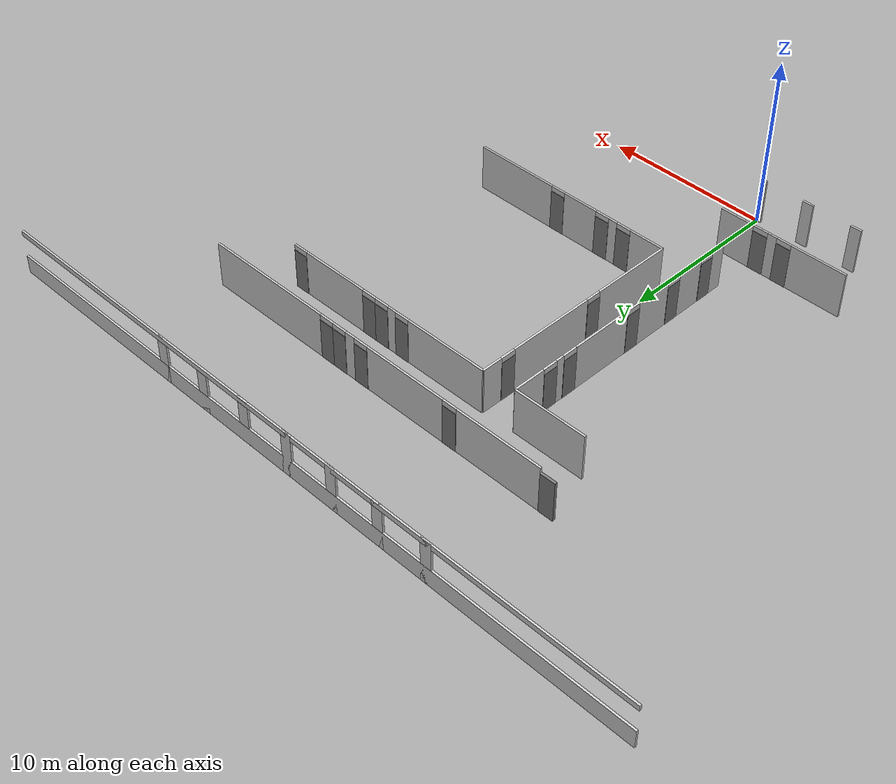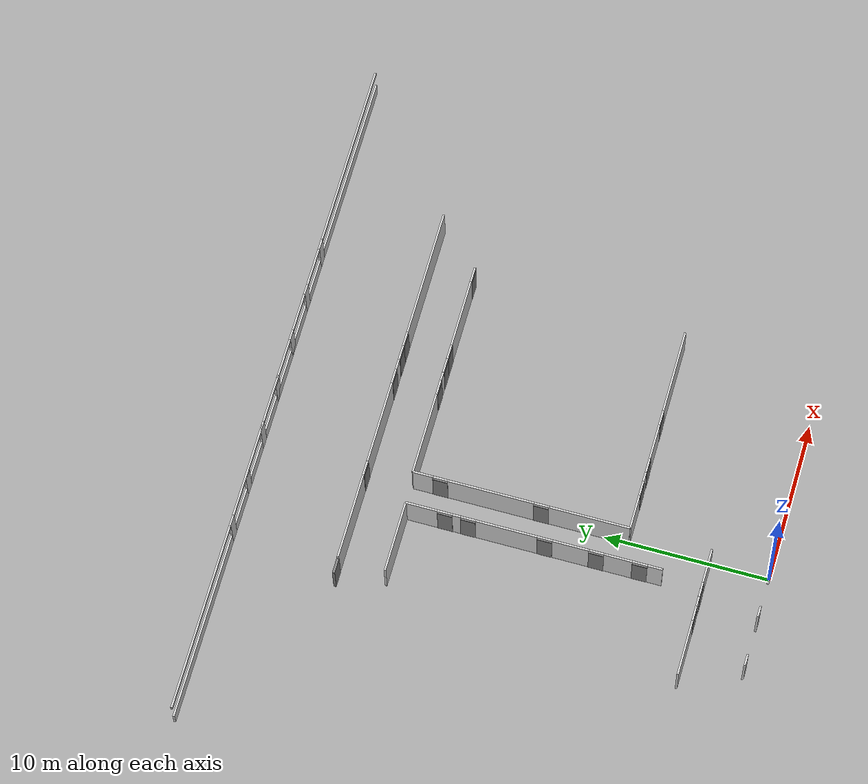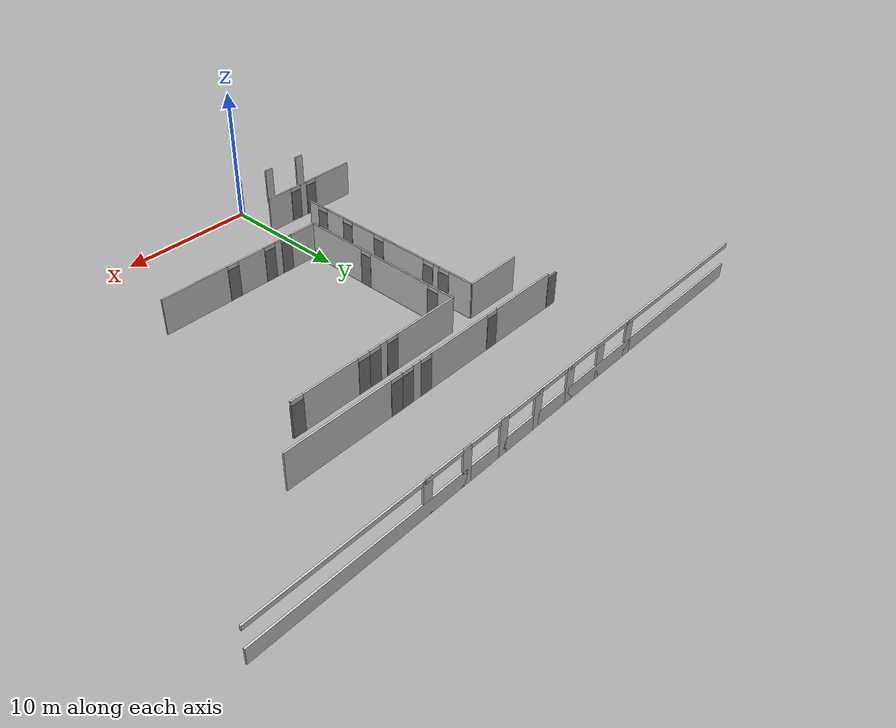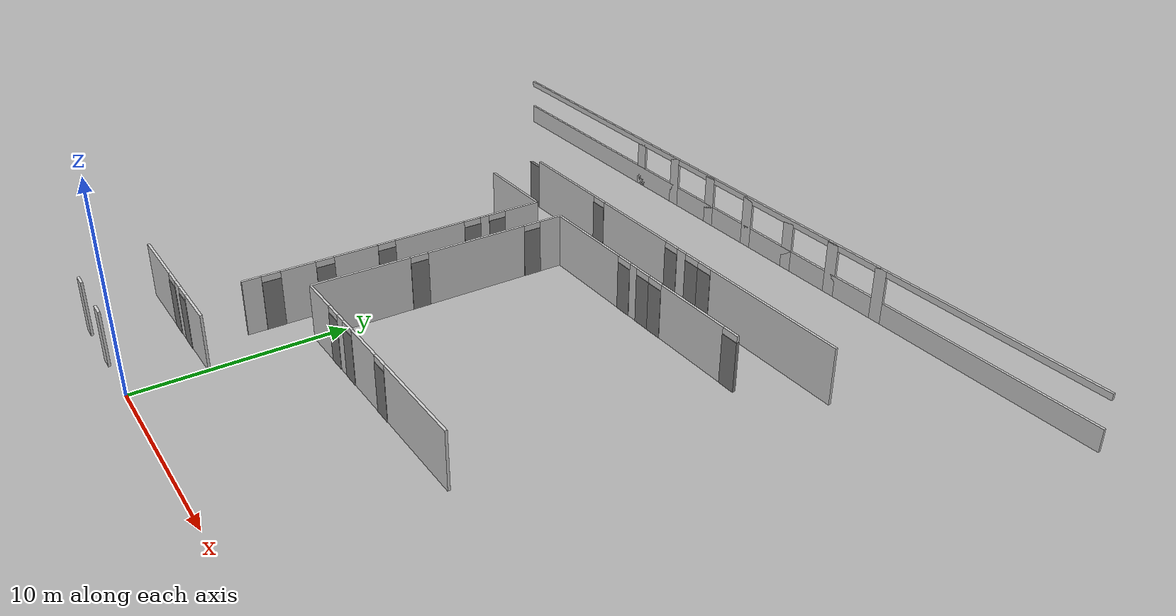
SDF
<sdf version="1.10">
 <model name="fourth_floor">
  <static>true</static>
  <link name="exteriors_001_solid">
   <pose>-0.1270 0.0000 1.3750 0 0 3.141593</pose>
   <collision name="exteriors_001_solid_collision">
    <geometry><box><size>0.2540 0.1199 2.7501</size></box></geometry>
   </collision>
   <visual name="exteriors_001_solid_visual">
    <geometry><box><size>0.2540 0.1199 2.7501</size></box></geometry>
    <material><ambient>0.82 0.82 0.82 1</ambient><diffuse>0.82 0.82 0.82 1</diffuse></material>
   </visual>
  </link>
  <link name="exteriors_002_windows_block_post_1">
   <pose>-2.9623 0.0000 1.3750 0 0 3.141593</pose>
   <collision name="exteriors_002_windows_block_post_1_collision">
    <geometry><box><size>0.6794 0.1199 2.7501</size></box></geometry>
   </collision>
   <visual name="exteriors_002_windows_block_post_1_visual">
    <geometry><box><size>0.6794 0.1199 2.7501</size></box></geometry>
    <material><ambient>0.82 0.82 0.82 1</ambient><diffuse>0.82 0.82 0.82 1</diffuse></material>
   </visual>
  </link>
  <link name="exteriors_002_windows_block_post_2">
   <pose>-6.0103 0.0000 1.3750 0 0 3.141593</pose>
   <collision name="exteriors_002_windows_block_post_2_collision">
    <geometry><box><size>0.6794 0.1199 2.7501</size></box></geometry>
   </collision>
   <visual name="exteriors_002_windows_block_post_2_visual">
    <geometry><box><size>0.6794 0.1199 2.7501</size></box></geometry>
    <material><ambient>0.82 0.82 0.82 1</ambient><diffuse>0.82 0.82 0.82 1</diffuse></material>
   </visual>
  </link>
  <link name="exteriors_018_windows_block_lower_strip">
   <pose>3.3877 31.0451 0.5461 0 0 0.000000</pose>
   <collision name="exteriors_018_windows_block_lower_strip_collision">
    <geometry><box><size>41.9926 0.1199 1.0922</size></box></geometry>
   </collision>
   <visual name="exteriors_018_windows_block_lower_strip_visual">
    <geometry><box><size>41.9926 0.1199 1.0922</size></box></geometry>
    <material><ambient>0.82 0.82 0.82 1</ambient><diffuse>0.82 0.82 0.82 1</diffuse></material>
   </visual>
  </link>
  <link name="exteriors_018_windows_block_upper_strip">
   <pose>3.3877 31.0451 2.5942 0 0 0.000000</pose>
   <collision name="exteriors_018_windows_block_upper_strip_collision">
    <geometry><box><size>41.9926 0.1199 0.3117</size></box></geometry>
   </collision>
   <visual name="exteriors_018_windows_block_upper_strip_visual">
    <geometry><box><size>41.9926 0.1199 0.3117</size></box></geometry>
    <material><ambient>0.82 0.82 0.82 1</ambient><diffuse>0.82 0.82 0.82 1</diffuse></material>
   </visual>
  </link>
  <link name="exteriors_018_windows_block_post_4">
   <pose>-5.7563 31.0451 1.3750 0 0 0.000000</pose>
   <collision name="exteriors_018_windows_block_post_4_collision">
    <geometry><box><size>0.6794 0.1199 2.7501</size></box></geometry>
   </collision>
   <visual name="exteriors_018_windows_block_post_4_visual">
    <geometry><box><size>0.6794 0.1199 2.7501</size></box></geometry>
    <material><ambient>0.82 0.82 0.82 1</ambient><diffuse>0.82 0.82 0.82 1</diffuse></material>
   </visual>
  </link>
  <link name="exteriors_018_windows_block_post_5">
   <pose>-2.7083 31.0451 1.3750 0 0 0.000000</pose>
   <collision name="exteriors_018_windows_block_post_5_collision">
    <geometry><box><size>0.6794 0.1199 2.7501</size></box></geometry>
   </collision>
   <visual name="exteriors_018_windows_block_post_5_visual">
    <geometry><box><size>0.6794 0.1199 2.7501</size></box></geometry>
    <material><ambient>0.82 0.82 0.82 1</ambient><diffuse>0.82 0.82 0.82 1</diffuse></material>
   </visual>
  </link>
  <link name="exteriors_018_windows_block_post_6">
   <pose>0.3397 31.0451 1.3750 0 0 0.000000</pose>
   <collision name="exteriors_018_windows_block_post_6_collision">
    <geometry><box><size>0.6794 0.1199 2.7501</size></box></geometry>
   </collision>
   <visual name="exteriors_018_windows_block_post_6_visual">
    <geometry><box><size>0.6794 0.1199 2.7501</size></box></geometry>
    <material><ambient>0.82 0.82 0.82 1</ambient><diffuse>0.82 0.82 0.82 1</diffuse></material>
   </visual>
  </link>
  <link name="exteriors_018_windows_block_post_7">
   <pose>3.3877 31.0451 1.3750 0 0 0.000000</pose>
   <collision name="exteriors_018_windows_block_post_7_collision">
    <geometry><box><size>0.6794 0.1199 2.7501</size></box></geometry>
   </collision>
   <visual name="exteriors_018_windows_block_post_7_visual">
    <geometry><box><size>0.6794 0.1199 2.7501</size></box></geometry>
    <material><ambient>0.82 0.82 0.82 1</ambient><diffuse>0.82 0.82 0.82 1</diffuse></material>
   </visual>
  </link>
  <link name="exteriors_018_windows_block_post_8">
   <pose>6.4357 31.0451 1.3750 0 0 0.000000</pose>
   <collision name="exteriors_018_windows_block_post_8_collision">
    <geometry><box><size>0.6794 0.1199 2.7501</size></box></geometry>
   </collision>
   <visual name="exteriors_018_windows_block_post_8_visual">
    <geometry><box><size>0.6794 0.1199 2.7501</size></box></geometry>
    <material><ambient>0.82 0.82 0.82 1</ambient><diffuse>0.82 0.82 0.82 1</diffuse></material>
   </visual>
  </link>
  <link name="exteriors_018_windows_block_post_9">
   <pose>9.4837 31.0451 1.3750 0 0 0.000000</pose>
   <collision name="exteriors_018_windows_block_post_9_collision">
    <geometry><box><size>0.6794 0.1199 2.7501</size></box></geometry>
   </collision>
   <visual name="exteriors_018_windows_block_post_9_visual">
    <geometry><box><size>0.6794 0.1199 2.7501</size></box></geometry>
    <material><ambient>0.82 0.82 0.82 1</ambient><diffuse>0.82 0.82 0.82 1</diffuse></material>
   </visual>
  </link>
  <link name="exteriors_018_windows_block_post_10">
   <pose>12.5317 31.0451 1.3750 0 0 0.000000</pose>
   <collision name="exteriors_018_windows_block_post_10_collision">
    <geometry><box><size>0.6794 0.1199 2.7501</size></box></geometry>
   </collision>
   <visual name="exteriors_018_windows_block_post_10_visual">
    <geometry><box><size>0.6794 0.1199 2.7501</size></box></geometry>
    <material><ambient>0.82 0.82 0.82 1</ambient><diffuse>0.82 0.82 0.82 1</diffuse></material>
   </visual>
  </link>
  <link name="hallways_001_solid">
   <pose>-1.0541 3.5814 1.3750 0 0 3.141593</pose>
   <collision name="hallways_001_solid_collision">
    <geometry><box><size>2.1082 0.1199 2.7501</size></box></geometry>
   </collision>
   <visual name="hallways_001_solid_visual">
    <geometry><box><size>2.1082 0.1199 2.7501</size></box></geometry>
    <material><ambient>0.82 0.82 0.82 1</ambient><diffuse>0.82 0.82 0.82 1</diffuse></material>
   </visual>
  </link>
  <link name="hallways_002_door_lintel">
   <pose>-2.5654 3.5814 2.5942 0 0 3.141593</pose>
   <collision name="hallways_002_door_lintel_collision">
    <geometry><box><size>0.9144 0.1199 0.3117</size></box></geometry>
   </collision>
   <visual name="hallways_002_door_lintel_visual">
    <geometry><box><size>0.9144 0.1199 0.3117</size></box></geometry>
    <material><ambient>0.82 0.82 0.82 1</ambient><diffuse>0.82 0.82 0.82 1</diffuse></material>
   </visual>
  </link>
  <link name="hallways_003_solid">
   <pose>-3.3147 3.5814 1.3750 0 0 3.141593</pose>
   <collision name="hallways_003_solid_collision">
    <geometry><box><size>0.5842 0.1199 2.7501</size></box></geometry>
   </collision>
   <visual name="hallways_003_solid_visual">
    <geometry><box><size>0.5842 0.1199 2.7501</size></box></geometry>
    <material><ambient>0.82 0.82 0.82 1</ambient><diffuse>0.82 0.82 0.82 1</diffuse></material>
   </visual>
  </link>
  <link name="hallways_004_door_lintel">
   <pose>-4.0640 3.5814 2.5942 0 0 3.141593</pose>
   <collision name="hallways_004_door_lintel_collision">
    <geometry><box><size>0.9144 0.1199 0.3117</size></box></geometry>
   </collision>
   <visual name="hallways_004_door_lintel_visual">
    <geometry><box><size>0.9144 0.1199 0.3117</size></box></geometry>
    <material><ambient>0.82 0.82 0.82 1</ambient><diffuse>0.82 0.82 0.82 1</diffuse></material>
   </visual>
  </link>
  <link name="hallways_005_solid">
   <pose>-6.2103 3.5814 1.3750 0 0 3.141593</pose>
   <collision name="hallways_005_solid_collision">
    <geometry><box><size>3.3782 0.1199 2.7501</size></box></geometry>
   </collision>
   <visual name="hallways_005_solid_visual">
    <geometry><box><size>3.3782 0.1199 2.7501</size></box></geometry>
    <material><ambient>0.82 0.82 0.82 1</ambient><diffuse>0.82 0.82 0.82 1</diffuse></material>
   </visual>
  </link>
  <link name="hallways_032_solid">
   <pose>-3.6195 24.4399 1.3750 0 0 0.000000</pose>
   <collision name="hallways_032_solid_collision">
    <geometry><box><size>5.2832 0.1199 2.7501</size></box></geometry>
   </collision>
   <visual name="hallways_032_solid_visual">
    <geometry><box><size>5.2832 0.1199 2.7501</size></box></geometry>
    <material><ambient>0.82 0.82 0.82 1</ambient><diffuse>0.82 0.82 0.82 1</diffuse></material>
   </visual>
  </link>
  <link name="hallways_033_door_lintel">
   <pose>-0.5207 24.4399 2.5942 0 0 0.000000</pose>
   <collision name="hallways_033_door_lintel_collision">
    <geometry><box><size>0.9144 0.1199 0.3117</size></box></geometry>
   </collision>
   <visual name="hallways_033_door_lintel_visual">
    <geometry><box><size>0.9144 0.1199 0.3117</size></box></geometry>
    <material><ambient>0.82 0.82 0.82 1</ambient><diffuse>0.82 0.82 0.82 1</diffuse></material>
   </visual>
  </link>
  <link name="hallways_034_solid">
   <pose>2.5019 24.4399 1.3750 0 0 0.000000</pose>
   <collision name="hallways_034_solid_collision">
    <geometry><box><size>5.1308 0.1199 2.7501</size></box></geometry>
   </collision>
   <visual name="hallways_034_solid_visual">
    <geometry><box><size>5.1308 0.1199 2.7501</size></box></geometry>
    <material><ambient>0.82 0.82 0.82 1</ambient><diffuse>0.82 0.82 0.82 1</diffuse></material>
   </visual>
  </link>
  <link name="hallways_035_door_lintel">
   <pose>5.5245 24.4399 2.5942 0 0 0.000000</pose>
   <collision name="hallways_035_door_lintel_collision">
    <geometry><box><size>0.9144 0.1199 0.3117</size></box></geometry>
   </collision>
   <visual name="hallways_035_door_lintel_visual">
    <geometry><box><size>0.9144 0.1199 0.3117</size></box></geometry>
    <material><ambient>0.82 0.82 0.82 1</ambient><diffuse>0.82 0.82 0.82 1</diffuse></material>
   </visual>
  </link>
  <link name="hallways_036_solid">
   <pose>6.2992 24.4399 1.3750 0 0 0.000000</pose>
   <collision name="hallways_036_solid_collision">
    <geometry><box><size>0.6350 0.1199 2.7501</size></box></geometry>
   </collision>
   <visual name="hallways_036_solid_visual">
    <geometry><box><size>0.6350 0.1199 2.7501</size></box></geometry>
    <material><ambient>0.82 0.82 0.82 1</ambient><diffuse>0.82 0.82 0.82 1</diffuse></material>
   </visual>
  </link>
  <link name="hallways_037_door_lintel">
   <pose>7.0739 24.4399 2.5942 0 0 0.000000</pose>
   <collision name="hallways_037_door_lintel_collision">
    <geometry><box><size>0.9144 0.1199 0.3117</size></box></geometry>
   </collision>
   <visual name="hallways_037_door_lintel_visual">
    <geometry><box><size>0.9144 0.1199 0.3117</size></box></geometry>
    <material><ambient>0.82 0.82 0.82 1</ambient><diffuse>0.82 0.82 0.82 1</diffuse></material>
   </visual>
  </link>
  <link name="hallways_038_door_lintel">
   <pose>7.9883 24.4399 2.5942 0 0 0.000000</pose>
   <collision name="hallways_038_door_lintel_collision">
    <geometry><box><size>0.9144 0.1199 0.3117</size></box></geometry>
   </collision>
   <visual name="hallways_038_door_lintel_visual">
    <geometry><box><size>0.9144 0.1199 0.3117</size></box></geometry>
    <material><ambient>0.82 0.82 0.82 1</ambient><diffuse>0.82 0.82 0.82 1</diffuse></material>
   </visual>
  </link>
  <link name="hallways_039_solid">
   <pose>12.4079 24.4399 1.3750 0 0 0.000000</pose>
   <collision name="hallways_039_solid_collision">
    <geometry><box><size>7.9248 0.1199 2.7501</size></box></geometry>
   </collision>
   <visual name="hallways_039_solid_visual">
    <geometry><box><size>7.9248 0.1199 2.7501</size></box></geometry>
    <material><ambient>0.82 0.82 0.82 1</ambient><diffuse>0.82 0.82 0.82 1</diffuse></material>
   </visual>
  </link>
  <link name="inner_walls_1_001_solid">
   <pose>1.0636 8.5090 1.3750 0 0 0.000000</pose>
   <collision name="inner_walls_1_001_solid_collision">
    <geometry><box><size>2.1273 0.1199 2.7501</size></box></geometry>
   </collision>
   <visual name="inner_walls_1_001_solid_visual">
    <geometry><box><size>2.1273 0.1199 2.7501</size></box></geometry>
    <material><ambient>0.82 0.82 0.82 1</ambient><diffuse>0.82 0.82 0.82 1</diffuse></material>
   </visual>
  </link>
  <link name="inner_walls_1_002_door_lintel">
   <pose>2.5844 8.5090 2.5942 0 0 0.000000</pose>
   <collision name="inner_walls_1_002_door_lintel_collision">
    <geometry><box><size>0.9144 0.1199 0.3117</size></box></geometry>
   </collision>
   <visual name="inner_walls_1_002_door_lintel_visual">
    <geometry><box><size>0.9144 0.1199 0.3117</size></box></geometry>
    <material><ambient>0.82 0.82 0.82 1</ambient><diffuse>0.82 0.82 0.82 1</diffuse></material>
   </visual>
  </link>
  <link name="inner_walls_1_003_solid">
   <pose>3.3211 8.5090 1.3750 0 0 0.000000</pose>
   <collision name="inner_walls_1_003_solid_collision">
    <geometry><box><size>0.5588 0.1199 2.7501</size></box></geometry>
   </collision>
   <visual name="inner_walls_1_003_solid_visual">
    <geometry><box><size>0.5588 0.1199 2.7501</size></box></geometry>
    <material><ambient>0.82 0.82 0.82 1</ambient><diffuse>0.82 0.82 0.82 1</diffuse></material>
   </visual>
  </link>
  <link name="inner_walls_1_004_door_lintel">
   <pose>4.0576 8.5090 2.5942 0 0 0.000000</pose>
   <collision name="inner_walls_1_004_door_lintel_collision">
    <geometry><box><size>0.9144 0.1199 0.3117</size></box></geometry>
   </collision>
   <visual name="inner_walls_1_004_door_lintel_visual">
    <geometry><box><size>0.9144 0.1199 0.3117</size></box></geometry>
    <material><ambient>0.82 0.82 0.82 1</ambient><diffuse>0.82 0.82 0.82 1</diffuse></material>
   </visual>
  </link>
  <link name="inner_walls_1_005_solid">
   <pose>5.6261 8.5090 1.3750 0 0 0.000000</pose>
   <collision name="inner_walls_1_005_solid_collision">
    <geometry><box><size>2.2225 0.1199 2.7501</size></box></geometry>
   </collision>
   <visual name="inner_walls_1_005_solid_visual">
    <geometry><box><size>2.2225 0.1199 2.7501</size></box></geometry>
    <material><ambient>0.82 0.82 0.82 1</ambient><diffuse>0.82 0.82 0.82 1</diffuse></material>
   </visual>
  </link>
  <link name="inner_walls_1_006_door_lintel">
   <pose>7.1945 8.5090 2.5942 0 0 0.000000</pose>
   <collision name="inner_walls_1_006_door_lintel_collision">
    <geometry><box><size>0.9144 0.1199 0.3117</size></box></geometry>
   </collision>
   <visual name="inner_walls_1_006_door_lintel_visual">
    <geometry><box><size>0.9144 0.1199 0.3117</size></box></geometry>
    <material><ambient>0.82 0.82 0.82 1</ambient><diffuse>0.82 0.82 0.82 1</diffuse></material>
   </visual>
  </link>
  <link name="inner_walls_1_007_solid">
   <pose>10.2298 8.5090 1.3750 0 0 0.000000</pose>
   <collision name="inner_walls_1_007_solid_collision">
    <geometry><box><size>5.1562 0.1199 2.7501</size></box></geometry>
   </collision>
   <visual name="inner_walls_1_007_solid_visual">
    <geometry><box><size>5.1562 0.1199 2.7501</size></box></geometry>
    <material><ambient>0.82 0.82 0.82 1</ambient><diffuse>0.82 0.82 0.82 1</diffuse></material>
   </visual>
  </link>
  <link name="inner_walls_1_017_door_lintel">
   <pose>13.0619 21.6916 2.5942 0 0 3.141593</pose>
   <collision name="inner_walls_1_017_door_lintel_collision">
    <geometry><box><size>0.9144 0.1199 0.3117</size></box></geometry>
   </collision>
   <visual name="inner_walls_1_017_door_lintel_visual">
    <geometry><box><size>0.9144 0.1199 0.3117</size></box></geometry>
    <material><ambient>0.82 0.82 0.82 1</ambient><diffuse>0.82 0.82 0.82 1</diffuse></material>
   </visual>
  </link>
  <link name="inner_walls_1_018_solid">
   <pose>10.4839 21.6916 1.3750 0 0 3.141593</pose>
   <collision name="inner_walls_1_018_solid_collision">
    <geometry><box><size>4.2418 0.1199 2.7501</size></box></geometry>
   </collision>
   <visual name="inner_walls_1_018_solid_visual">
    <geometry><box><size>4.2418 0.1199 2.7501</size></box></geometry>
    <material><ambient>0.82 0.82 0.82 1</ambient><diffuse>0.82 0.82 0.82 1</diffuse></material>
   </visual>
  </link>
  <link name="inner_walls_1_019_door_lintel">
   <pose>7.9057 21.6916 2.5942 0 0 3.141593</pose>
   <collision name="inner_walls_1_019_door_lintel_collision">
    <geometry><box><size>0.9144 0.1199 0.3117</size></box></geometry>
   </collision>
   <visual name="inner_walls_1_019_door_lintel_visual">
    <geometry><box><size>0.9144 0.1199 0.3117</size></box></geometry>
    <material><ambient>0.82 0.82 0.82 1</ambient><diffuse>0.82 0.82 0.82 1</diffuse></material>
   </visual>
  </link>
  <link name="inner_walls_1_020_door_lintel">
   <pose>6.9913 21.6916 2.5942 0 0 3.141593</pose>
   <collision name="inner_walls_1_020_door_lintel_collision">
    <geometry><box><size>0.9144 0.1199 0.3117</size></box></geometry>
   </collision>
   <visual name="inner_walls_1_020_door_lintel_visual">
    <geometry><box><size>0.9144 0.1199 0.3117</size></box></geometry>
    <material><ambient>0.82 0.82 0.82 1</ambient><diffuse>0.82 0.82 0.82 1</diffuse></material>
   </visual>
  </link>
  <link name="inner_walls_1_021_solid">
   <pose>6.2675 21.6916 1.3750 0 0 3.141593</pose>
   <collision name="inner_walls_1_021_solid_collision">
    <geometry><box><size>0.5334 0.1199 2.7501</size></box></geometry>
   </collision>
   <visual name="inner_walls_1_021_solid_visual">
    <geometry><box><size>0.5334 0.1199 2.7501</size></box></geometry>
    <material><ambient>0.82 0.82 0.82 1</ambient><diffuse>0.82 0.82 0.82 1</diffuse></material>
   </visual>
  </link>
  <link name="inner_walls_1_022_door_lintel">
   <pose>5.5435 21.6916 2.5942 0 0 3.141593</pose>
   <collision name="inner_walls_1_022_door_lintel_collision">
    <geometry><box><size>0.9144 0.1199 0.3117</size></box></geometry>
   </collision>
   <visual name="inner_walls_1_022_door_lintel_visual">
    <geometry><box><size>0.9144 0.1199 0.3117</size></box></geometry>
    <material><ambient>0.82 0.82 0.82 1</ambient><diffuse>0.82 0.82 0.82 1</diffuse></material>
   </visual>
  </link>
  <link name="inner_walls_1_023_solid">
   <pose>2.5463 21.6916 1.3750 0 0 3.141593</pose>
   <collision name="inner_walls_1_023_solid_collision">
    <geometry><box><size>5.0800 0.1199 2.7501</size></box></geometry>
   </collision>
   <visual name="inner_walls_1_023_solid_visual">
    <geometry><box><size>5.0800 0.1199 2.7501</size></box></geometry>
    <material><ambient>0.82 0.82 0.82 1</ambient><diffuse>0.82 0.82 0.82 1</diffuse></material>
   </visual>
  </link>
  <link name="inner_walls_1_025_solid">
   <pose>0.0063 21.0820 1.3750 0 0 4.712389</pose>
   <collision name="inner_walls_1_025_solid_collision">
    <geometry><box><size>1.2192 0.1199 2.7501</size></box></geometry>
   </collision>
   <visual name="inner_walls_1_025_solid_visual">
    <geometry><box><size>1.2192 0.1199 2.7501</size></box></geometry>
    <material><ambient>0.82 0.82 0.82 1</ambient><diffuse>0.82 0.82 0.82 1</diffuse></material>
   </visual>
  </link>
  <link name="inner_walls_1_026_door_lintel">
   <pose>0.0063 20.0152 2.5942 0 0 4.712389</pose>
   <collision name="inner_walls_1_026_door_lintel_collision">
    <geometry><box><size>0.9144 0.1199 0.3117</size></box></geometry>
   </collision>
   <visual name="inner_walls_1_026_door_lintel_visual">
    <geometry><box><size>0.9144 0.1199 0.3117</size></box></geometry>
    <material><ambient>0.82 0.82 0.82 1</ambient><diffuse>0.82 0.82 0.82 1</diffuse></material>
   </visual>
  </link>
  <link name="inner_walls_1_027_solid">
   <pose>0.0063 16.9418 1.3750 0 0 4.712389</pose>
   <collision name="inner_walls_1_027_solid_collision">
    <geometry><box><size>5.2324 0.1199 2.7501</size></box></geometry>
   </collision>
   <visual name="inner_walls_1_027_solid_visual">
    <geometry><box><size>5.2324 0.1199 2.7501</size></box></geometry>
    <material><ambient>0.82 0.82 0.82 1</ambient><diffuse>0.82 0.82 0.82 1</diffuse></material>
   </visual>
  </link>
  <link name="inner_walls_1_028_door_lintel">
   <pose>0.0063 13.8684 2.5942 0 0 4.712389</pose>
   <collision name="inner_walls_1_028_door_lintel_collision">
    <geometry><box><size>0.9144 0.1199 0.3117</size></box></geometry>
   </collision>
   <visual name="inner_walls_1_028_door_lintel_visual">
    <geometry><box><size>0.9144 0.1199 0.3117</size></box></geometry>
    <material><ambient>0.82 0.82 0.82 1</ambient><diffuse>0.82 0.82 0.82 1</diffuse></material>
   </visual>
  </link>
  <link name="inner_walls_1_029_solid">
   <pose>0.0063 10.9601 1.3750 0 0 4.712389</pose>
   <collision name="inner_walls_1_029_solid_collision">
    <geometry><box><size>4.9022 0.1199 2.7501</size></box></geometry>
   </collision>
   <visual name="inner_walls_1_029_solid_visual">
    <geometry><box><size>4.9022 0.1199 2.7501</size></box></geometry>
    <material><ambient>0.82 0.82 0.82 1</ambient><diffuse>0.82 0.82 0.82 1</diffuse></material>
   </visual>
  </link>
  <link name="inner_walls_2_020_solid">
   <pose>-4.1478 21.5646 1.3750 0 0 0.000000</pose>
   <collision name="inner_walls_2_020_solid_collision">
    <geometry><box><size>4.3688 0.1199 2.7501</size></box></geometry>
   </collision>
   <visual name="inner_walls_2_020_solid_visual">
    <geometry><box><size>4.3688 0.1199 2.7501</size></box></geometry>
    <material><ambient>0.82 0.82 0.82 1</ambient><diffuse>0.82 0.82 0.82 1</diffuse></material>
   </visual>
  </link>
  <link name="inner_walls_2_022_solid">
   <pose>-1.9634 20.5994 1.3750 0 0 4.712389</pose>
   <collision name="inner_walls_2_022_solid_collision">
    <geometry><box><size>1.9304 0.1199 2.7501</size></box></geometry>
   </collision>
   <visual name="inner_walls_2_022_solid_visual">
    <geometry><box><size>1.9304 0.1199 2.7501</size></box></geometry>
    <material><ambient>0.82 0.82 0.82 1</ambient><diffuse>0.82 0.82 0.82 1</diffuse></material>
   </visual>
  </link>
  <link name="inner_walls_2_023_door_lintel">
   <pose>-1.9634 19.1770 2.5942 0 0 4.712389</pose>
   <collision name="inner_walls_2_023_door_lintel_collision">
    <geometry><box><size>0.9144 0.1199 0.3117</size></box></geometry>
   </collision>
   <visual name="inner_walls_2_023_door_lintel_visual">
    <geometry><box><size>0.9144 0.1199 0.3117</size></box></geometry>
    <material><ambient>0.82 0.82 0.82 1</ambient><diffuse>0.82 0.82 0.82 1</diffuse></material>
   </visual>
  </link>
  <link name="inner_walls_2_024_solid">
   <pose>-1.9634 18.4785 1.3750 0 0 4.712389</pose>
   <collision name="inner_walls_2_024_solid_collision">
    <geometry><box><size>0.4826 0.1199 2.7501</size></box></geometry>
   </collision>
   <visual name="inner_walls_2_024_solid_visual">
    <geometry><box><size>0.4826 0.1199 2.7501</size></box></geometry>
    <material><ambient>0.82 0.82 0.82 1</ambient><diffuse>0.82 0.82 0.82 1</diffuse></material>
   </visual>
  </link>
  <link name="inner_walls_2_025_door_lintel">
   <pose>-1.9634 17.7800 2.5942 0 0 4.712389</pose>
   <collision name="inner_walls_2_025_door_lintel_collision">
    <geometry><box><size>0.9144 0.1199 0.3117</size></box></geometry>
   </collision>
   <visual name="inner_walls_2_025_door_lintel_visual">
    <geometry><box><size>0.9144 0.1199 0.3117</size></box></geometry>
    <material><ambient>0.82 0.82 0.82 1</ambient><diffuse>0.82 0.82 0.82 1</diffuse></material>
   </visual>
  </link>
  <link name="inner_walls_2_026_solid">
   <pose>-1.9634 15.4559 1.3750 0 0 4.712389</pose>
   <collision name="inner_walls_2_026_solid_collision">
    <geometry><box><size>3.7338 0.1199 2.7501</size></box></geometry>
   </collision>
   <visual name="inner_walls_2_026_solid_visual">
    <geometry><box><size>3.7338 0.1199 2.7501</size></box></geometry>
    <material><ambient>0.82 0.82 0.82 1</ambient><diffuse>0.82 0.82 0.82 1</diffuse></material>
   </visual>
  </link>
  <link name="inner_walls_2_027_door_lintel">
   <pose>-1.9634 13.1318 2.5942 0 0 4.712389</pose>
   <collision name="inner_walls_2_027_door_lintel_collision">
    <geometry><box><size>0.9144 0.1199 0.3117</size></box></geometry>
   </collision>
   <visual name="inner_walls_2_027_door_lintel_visual">
    <geometry><box><size>0.9144 0.1199 0.3117</size></box></geometry>
    <material><ambient>0.82 0.82 0.82 1</ambient><diffuse>0.82 0.82 0.82 1</diffuse></material>
   </visual>
  </link>
  <link name="inner_walls_2_028_solid">
   <pose>-1.9634 11.5697 1.3750 0 0 4.712389</pose>
   <collision name="inner_walls_2_028_solid_collision">
    <geometry><box><size>2.2098 0.1199 2.7501</size></box></geometry>
   </collision>
   <visual name="inner_walls_2_028_solid_visual">
    <geometry><box><size>2.2098 0.1199 2.7501</size></box></geometry>
    <material><ambient>0.82 0.82 0.82 1</ambient><diffuse>0.82 0.82 0.82 1</diffuse></material>
   </visual>
  </link>
  <link name="inner_walls_2_029_door_lintel">
   <pose>-1.9634 10.0076 2.5942 0 0 4.712389</pose>
   <collision name="inner_walls_2_029_door_lintel_collision">
    <geometry><box><size>0.9144 0.1199 0.3117</size></box></geometry>
   </collision>
   <visual name="inner_walls_2_029_door_lintel_visual">
    <geometry><box><size>0.9144 0.1199 0.3117</size></box></geometry>
    <material><ambient>0.82 0.82 0.82 1</ambient><diffuse>0.82 0.82 0.82 1</diffuse></material>
   </visual>
  </link>
  <link name="inner_walls_2_030_solid">
   <pose>-1.9634 8.6995 1.3750 0 0 4.712389</pose>
   <collision name="inner_walls_2_030_solid_collision">
    <geometry><box><size>1.7018 0.1199 2.7501</size></box></geometry>
   </collision>
   <visual name="inner_walls_2_030_solid_visual">
    <geometry><box><size>1.7018 0.1199 2.7501</size></box></geometry>
    <material><ambient>0.82 0.82 0.82 1</ambient><diffuse>0.82 0.82 0.82 1</diffuse></material>
   </visual>
  </link>
  <link name="inner_walls_2_031_door_lintel">
   <pose>-1.9634 7.3914 2.5942 0 0 4.712389</pose>
   <collision name="inner_walls_2_031_door_lintel_collision">
    <geometry><box><size>0.9144 0.1199 0.3117</size></box></geometry>
   </collision>
   <visual name="inner_walls_2_031_door_lintel_visual">
    <geometry><box><size>0.9144 0.1199 0.3117</size></box></geometry>
    <material><ambient>0.82 0.82 0.82 1</ambient><diffuse>0.82 0.82 0.82 1</diffuse></material>
   </visual>
  </link>
  <link name="inner_walls_2_032_solid">
   <pose>-1.9634 6.4770 1.3750 0 0 4.712389</pose>
   <collision name="inner_walls_2_032_solid_collision">
    <geometry><box><size>0.9144 0.1199 2.7501</size></box></geometry>
   </collision>
   <visual name="inner_walls_2_032_solid_visual">
    <geometry><box><size>0.9144 0.1199 2.7501</size></box></geometry>
    <material><ambient>0.82 0.82 0.82 1</ambient><diffuse>0.82 0.82 0.82 1</diffuse></material>
   </visual>
  </link>
  <link name="hallways_002_door_panel">
   <pose>-2.5654 3.5814 1.2192 0 0 3.141593</pose>
   <inertial>
    <mass>25.0</mass>
    <inertia><ixx>12.4355</ixx><ixy>0</ixy><ixz>0</ixz><iyy>14.1290</iyy><iyz>0</iyz><izz>1.7903</izz></inertia>
   </inertial>
   <collision name="hallways_002_door_panel_collision">
    <geometry><box><size>0.9144 0.1524 2.4384</size></box></geometry>
    <surface>
     <friction><ode><mu>0.6</mu><mu2>0.6</mu2></ode></friction>
     <contact><ode><kp>1e6</kp><kd>1.0</kd></ode></contact>
    </surface>
   </collision>
   <visual name="hallways_002_door_panel_visual">
    <geometry><box><size>0.9144 0.1524 2.4384</size></box></geometry>
    <material>
     <ambient>0.5 0.5 0.5 1.0</ambient>
     <diffuse>0.5 0.5 0.5 1.0</diffuse>
     <specular>0.2 0.2 0.2 1.0</specular>
     <emissive>0 0 0 1.0</emissive>
    </material>
   </visual>
  </link>
  <link name="hallways_004_door_panel">
   <pose>-4.0640 3.5814 1.2192 0 0 3.141593</pose>
   <inertial>
    <mass>25.0</mass>
    <inertia><ixx>12.4355</ixx><ixy>0</ixy><ixz>0</ixz><iyy>14.1290</iyy><iyz>0</iyz><izz>1.7903</izz></inertia>
   </inertial>
   <collision name="hallways_004_door_panel_collision">
    <geometry><box><size>0.9144 0.1524 2.4384</size></box></geometry>
    <surface>
     <friction><ode><mu>0.6</mu><mu2>0.6</mu2></ode></friction>
     <contact><ode><kp>1e6</kp><kd>1.0</kd></ode></contact>
    </surface>
   </collision>
   <visual name="hallways_004_door_panel_visual">
    <geometry><box><size>0.9144 0.1524 2.4384</size></box></geometry>
    <material>
     <ambient>0.5 0.5 0.5 1.0</ambient>
     <diffuse>0.5 0.5 0.5 1.0</diffuse>
     <specular>0.2 0.2 0.2 1.0</specular>
     <emissive>0 0 0 1.0</emissive>
    </material>
   </visual>
  </link>
  <link name="hallways_031_door_panel">
   <pose>-6.7183 24.4399 1.2192 0 0 0.000000</pose>
   <inertial>
    <mass>25.0</mass>
    <inertia><ixx>12.4355</ixx><ixy>0</ixy><ixz>0</ixz><iyy>14.1290</iyy><iyz>0</iyz><izz>1.7903</izz></inertia>
   </inertial>
   <collision name="hallways_031_door_panel_collision">
    <geometry><box><size>0.9144 0.1524 2.4384</size></box></geometry>
    <surface>
     <friction><ode><mu>0.6</mu><mu2>0.6</mu2></ode></friction>
     <contact><ode><kp>1e6</kp><kd>1.0</kd></ode></contact>
    </surface>
   </collision>
   <visual name="hallways_031_door_panel_visual">
    <geometry><box><size>0.9144 0.1524 2.4384</size></box></geometry>
    <material>
     <ambient>0.5 0.5 0.5 1.0</ambient>
     <diffuse>0.5 0.5 0.5 1.0</diffuse>
     <specular>0.2 0.2 0.2 1.0</specular>
     <emissive>0 0 0 1.0</emissive>
    </material>
   </visual>
  </link>
  <link name="hallways_033_door_panel">
   <pose>-0.5207 24.4399 1.2192 0 0 0.000000</pose>
   <inertial>
    <mass>25.0</mass>
    <inertia><ixx>12.4355</ixx><ixy>0</ixy><ixz>0</ixz><iyy>14.1290</iyy><iyz>0</iyz><izz>1.7903</izz></inertia>
   </inertial>
   <collision name="hallways_033_door_panel_collision">
    <geometry><box><size>0.9144 0.1524 2.4384</size></box></geometry>
    <surface>
     <friction><ode><mu>0.6</mu><mu2>0.6</mu2></ode></friction>
     <contact><ode><kp>1e6</kp><kd>1.0</kd></ode></contact>
    </surface>
   </collision>
   <visual name="hallways_033_door_panel_visual">
    <geometry><box><size>0.9144 0.1524 2.4384</size></box></geometry>
    <material>
     <ambient>0.5 0.5 0.5 1.0</ambient>
     <diffuse>0.5 0.5 0.5 1.0</diffuse>
     <specular>0.2 0.2 0.2 1.0</specular>
     <emissive>0 0 0 1.0</emissive>
    </material>
   </visual>
  </link>
  <link name="hallways_035_door_panel">
   <pose>5.5245 24.4399 1.2192 0 0 0.000000</pose>
   <inertial>
    <mass>25.0</mass>
    <inertia><ixx>12.4355</ixx><ixy>0</ixy><ixz>0</ixz><iyy>14.1290</iyy><iyz>0</iyz><izz>1.7903</izz></inertia>
   </inertial>
   <collision name="hallways_035_door_panel_collision">
    <geometry><box><size>0.9144 0.1524 2.4384</size></box></geometry>
    <surface>
     <friction><ode><mu>0.6</mu><mu2>0.6</mu2></ode></friction>
     <contact><ode><kp>1e6</kp><kd>1.0</kd></ode></contact>
    </surface>
   </collision>
   <visual name="hallways_035_door_panel_visual">
    <geometry><box><size>0.9144 0.1524 2.4384</size></box></geometry>
    <material>
     <ambient>0.5 0.5 0.5 1.0</ambient>
     <diffuse>0.5 0.5 0.5 1.0</diffuse>
     <specular>0.2 0.2 0.2 1.0</specular>
     <emissive>0 0 0 1.0</emissive>
    </material>
   </visual>
  </link>
  <link name="hallways_037_door_panel">
   <pose>7.0739 24.4399 1.2192 0 0 0.000000</pose>
   <inertial>
    <mass>25.0</mass>
    <inertia><ixx>12.4355</ixx><ixy>0</ixy><ixz>0</ixz><iyy>14.1290</iyy><iyz>0</iyz><izz>1.7903</izz></inertia>
   </inertial>
   <collision name="hallways_037_door_panel_collision">
    <geometry><box><size>0.9144 0.1524 2.4384</size></box></geometry>
    <surface>
     <friction><ode><mu>0.6</mu><mu2>0.6</mu2></ode></friction>
     <contact><ode><kp>1e6</kp><kd>1.0</kd></ode></contact>
    </surface>
   </collision>
   <visual name="hallways_037_door_panel_visual">
    <geometry><box><size>0.9144 0.1524 2.4384</size></box></geometry>
    <material>
     <ambient>0.5 0.5 0.5 1.0</ambient>
     <diffuse>0.5 0.5 0.5 1.0</diffuse>
     <specular>0.2 0.2 0.2 1.0</specular>
     <emissive>0 0 0 1.0</emissive>
    </material>
   </visual>
  </link>
  <link name="hallways_038_door_panel">
   <pose>7.9883 24.4399 1.2192 0 0 0.000000</pose>
   <inertial>
    <mass>25.0</mass>
    <inertia><ixx>12.4355</ixx><ixy>0</ixy><ixz>0</ixz><iyy>14.1290</iyy><iyz>0</iyz><izz>1.7903</izz></inertia>
   </inertial>
   <collision name="hallways_038_door_panel_collision">
    <geometry><box><size>0.9144 0.1524 2.4384</size></box></geometry>
    <surface>
     <friction><ode><mu>0.6</mu><mu2>0.6</mu2></ode></friction>
     <contact><ode><kp>1e6</kp><kd>1.0</kd></ode></contact>
    </surface>
   </collision>
   <visual name="hallways_038_door_panel_visual">
    <geometry><box><size>0.9144 0.1524 2.4384</size></box></geometry>
    <material>
     <ambient>0.5 0.5 0.5 1.0</ambient>
     <diffuse>0.5 0.5 0.5 1.0</diffuse>
     <specular>0.2 0.2 0.2 1.0</specular>
     <emissive>0 0 0 1.0</emissive>
    </material>
   </visual>
  </link>
  <link name="inner_walls_1_002_door_panel">
   <pose>2.5844 8.5090 1.2192 0 0 0.000000</pose>
   <inertial>
    <mass>25.0</mass>
    <inertia><ixx>12.4355</ixx><ixy>0</ixy><ixz>0</ixz><iyy>14.1290</iyy><iyz>0</iyz><izz>1.7903</izz></inertia>
   </inertial>
   <collision name="inner_walls_1_002_door_panel_collision">
    <geometry><box><size>0.9144 0.1524 2.4384</size></box></geometry>
    <surface>
     <friction><ode><mu>0.6</mu><mu2>0.6</mu2></ode></friction>
     <contact><ode><kp>1e6</kp><kd>1.0</kd></ode></contact>
    </surface>
   </collision>
   <visual name="inner_walls_1_002_door_panel_visual">
    <geometry><box><size>0.9144 0.1524 2.4384</size></box></geometry>
    <material>
     <ambient>0.5 0.5 0.5 1.0</ambient>
     <diffuse>0.5 0.5 0.5 1.0</diffuse>
     <specular>0.2 0.2 0.2 1.0</specular>
     <emissive>0 0 0 1.0</emissive>
    </material>
   </visual>
  </link>
  <link name="inner_walls_1_004_door_panel">
   <pose>4.0576 8.5090 1.2192 0 0 0.000000</pose>
   <inertial>
    <mass>25.0</mass>
    <inertia><ixx>12.4355</ixx><ixy>0</ixy><ixz>0</ixz><iyy>14.1290</iyy><iyz>0</iyz><izz>1.7903</izz></inertia>
   </inertial>
   <collision name="inner_walls_1_004_door_panel_collision">
    <geometry><box><size>0.9144 0.1524 2.4384</size></box></geometry>
    <surface>
     <friction><ode><mu>0.6</mu><mu2>0.6</mu2></ode></friction>
     <contact><ode><kp>1e6</kp><kd>1.0</kd></ode></contact>
    </surface>
   </collision>
   <visual name="inner_walls_1_004_door_panel_visual">
    <geometry><box><size>0.9144 0.1524 2.4384</size></box></geometry>
    <material>
     <ambient>0.5 0.5 0.5 1.0</ambient>
     <diffuse>0.5 0.5 0.5 1.0</diffuse>
     <specular>0.2 0.2 0.2 1.0</specular>
     <emissive>0 0 0 1.0</emissive>
    </material>
   </visual>
  </link>
  <link name="inner_walls_1_006_door_panel">
   <pose>7.1945 8.5090 1.2192 0 0 0.000000</pose>
   <inertial>
    <mass>25.0</mass>
    <inertia><ixx>12.4355</ixx><ixy>0</ixy><ixz>0</ixz><iyy>14.1290</iyy><iyz>0</iyz><izz>1.7903</izz></inertia>
   </inertial>
   <collision name="inner_walls_1_006_door_panel_collision">
    <geometry><box><size>0.9144 0.1524 2.4384</size></box></geometry>
    <surface>
     <friction><ode><mu>0.6</mu><mu2>0.6</mu2></ode></friction>
     <contact><ode><kp>1e6</kp><kd>1.0</kd></ode></contact>
    </surface>
   </collision>
   <visual name="inner_walls_1_006_door_panel_visual">
    <geometry><box><size>0.9144 0.1524 2.4384</size></box></geometry>
    <material>
     <ambient>0.5 0.5 0.5 1.0</ambient>
     <diffuse>0.5 0.5 0.5 1.0</diffuse>
     <specular>0.2 0.2 0.2 1.0</specular>
     <emissive>0 0 0 1.0</emissive>
    </material>
   </visual>
  </link>
  <link name="inner_walls_1_017_door_panel">
   <pose>13.0619 21.6916 1.2192 0 0 3.141593</pose>
   <inertial>
    <mass>25.0</mass>
    <inertia><ixx>12.4355</ixx><ixy>0</ixy><ixz>0</ixz><iyy>14.1290</iyy><iyz>0</iyz><izz>1.7903</izz></inertia>
   </inertial>
   <collision name="inner_walls_1_017_door_panel_collision">
    <geometry><box><size>0.9144 0.1524 2.4384</size></box></geometry>
    <surface>
     <friction><ode><mu>0.6</mu><mu2>0.6</mu2></ode></friction>
     <contact><ode><kp>1e6</kp><kd>1.0</kd></ode></contact>
    </surface>
   </collision>
   <visual name="inner_walls_1_017_door_panel_visual">
    <geometry><box><size>0.9144 0.1524 2.4384</size></box></geometry>
    <material>
     <ambient>0.5 0.5 0.5 1.0</ambient>
     <diffuse>0.5 0.5 0.5 1.0</diffuse>
     <specular>0.2 0.2 0.2 1.0</specular>
     <emissive>0 0 0 1.0</emissive>
    </material>
   </visual>
  </link>
  <link name="inner_walls_1_019_door_panel">
   <pose>7.9057 21.6916 1.2192 0 0 3.141593</pose>
   <inertial>
    <mass>25.0</mass>
    <inertia><ixx>12.4355</ixx><ixy>0</ixy><ixz>0</ixz><iyy>14.1290</iyy><iyz>0</iyz><izz>1.7903</izz></inertia>
   </inertial>
   <collision name="inner_walls_1_019_door_panel_collision">
    <geometry><box><size>0.9144 0.1524 2.4384</size></box></geometry>
    <surface>
     <friction><ode><mu>0.6</mu><mu2>0.6</mu2></ode></friction>
     <contact><ode><kp>1e6</kp><kd>1.0</kd></ode></contact>
    </surface>
   </collision>
   <visual name="inner_walls_1_019_door_panel_visual">
    <geometry><box><size>0.9144 0.1524 2.4384</size></box></geometry>
    <material>
     <ambient>0.5 0.5 0.5 1.0</ambient>
     <diffuse>0.5 0.5 0.5 1.0</diffuse>
     <specular>0.2 0.2 0.2 1.0</specular>
     <emissive>0 0 0 1.0</emissive>
    </material>
   </visual>
  </link>
  <link name="inner_walls_1_020_door_panel">
   <pose>6.9913 21.6916 1.2192 0 0 3.141593</pose>
   <inertial>
    <mass>25.0</mass>
    <inertia><ixx>12.4355</ixx><ixy>0</ixy><ixz>0</ixz><iyy>14.1290</iyy><iyz>0</iyz><izz>1.7903</izz></inertia>
   </inertial>
   <collision name="inner_walls_1_020_door_panel_collision">
    <geometry><box><size>0.9144 0.1524 2.4384</size></box></geometry>
    <surface>
     <friction><ode><mu>0.6</mu><mu2>0.6</mu2></ode></friction>
     <contact><ode><kp>1e6</kp><kd>1.0</kd></ode></contact>
    </surface>
   </collision>
   <visual name="inner_walls_1_020_door_panel_visual">
    <geometry><box><size>0.9144 0.1524 2.4384</size></box></geometry>
    <material>
     <ambient>0.5 0.5 0.5 1.0</ambient>
     <diffuse>0.5 0.5 0.5 1.0</diffuse>
     <specular>0.2 0.2 0.2 1.0</specular>
     <emissive>0 0 0 1.0</emissive>
    </material>
   </visual>
  </link>
  <link name="inner_walls_1_022_door_panel">
   <pose>5.5435 21.6916 1.2192 0 0 3.141593</pose>
   <inertial>
    <mass>25.0</mass>
    <inertia><ixx>12.4355</ixx><ixy>0</ixy><ixz>0</ixz><iyy>14.1290</iyy><iyz>0</iyz><izz>1.7903</izz></inertia>
   </inertial>
   <collision name="inner_walls_1_022_door_panel_collision">
    <geometry><box><size>0.9144 0.1524 2.4384</size></box></geometry>
    <surface>
     <friction><ode><mu>0.6</mu><mu2>0.6</mu2></ode></friction>
     <contact><ode><kp>1e6</kp><kd>1.0</kd></ode></contact>
    </surface>
   </collision>
   <visual name="inner_walls_1_022_door_panel_visual">
    <geometry><box><size>0.9144 0.1524 2.4384</size></box></geometry>
    <material>
     <ambient>0.5 0.5 0.5 1.0</ambient>
     <diffuse>0.5 0.5 0.5 1.0</diffuse>
     <specular>0.2 0.2 0.2 1.0</specular>
     <emissive>0 0 0 1.0</emissive>
    </material>
   </visual>
  </link>
  <link name="inner_walls_1_026_door_panel">
   <pose>0.0063 20.0152 1.2192 0 0 4.712389</pose>
   <inertial>
    <mass>25.0</mass>
    <inertia><ixx>12.4355</ixx><ixy>0</ixy><ixz>0</ixz><iyy>14.1290</iyy><iyz>0</iyz><izz>1.7903</izz></inertia>
   </inertial>
   <collision name="inner_walls_1_026_door_panel_collision">
    <geometry><box><size>0.9144 0.1524 2.4384</size></box></geometry>
    <surface>
     <friction><ode><mu>0.6</mu><mu2>0.6</mu2></ode></friction>
     <contact><ode><kp>1e6</kp><kd>1.0</kd></ode></contact>
    </surface>
   </collision>
   <visual name="inner_walls_1_026_door_panel_visual">
    <geometry><box><size>0.9144 0.1524 2.4384</size></box></geometry>
    <material>
     <ambient>0.5 0.5 0.5 1.0</ambient>
     <diffuse>0.5 0.5 0.5 1.0</diffuse>
     <specular>0.2 0.2 0.2 1.0</specular>
     <emissive>0 0 0 1.0</emissive>
    </material>
   </visual>
  </link>
  <link name="inner_walls_1_028_door_panel">
   <pose>0.0063 13.8684 1.2192 0 0 4.712389</pose>
   <inertial>
    <mass>25.0</mass>
    <inertia><ixx>12.4355</ixx><ixy>0</ixy><ixz>0</ixz><iyy>14.1290</iyy><iyz>0</iyz><izz>1.7903</izz></inertia>
   </inertial>
   <collision name="inner_walls_1_028_door_panel_collision">
    <geometry><box><size>0.9144 0.1524 2.4384</size></box></geometry>
    <surface>
     <friction><ode><mu>0.6</mu><mu2>0.6</mu2></ode></friction>
     <contact><ode><kp>1e6</kp><kd>1.0</kd></ode></contact>
    </surface>
   </collision>
   <visual name="inner_walls_1_028_door_panel_visual">
    <geometry><box><size>0.9144 0.1524 2.4384</size></box></geometry>
    <material>
     <ambient>0.5 0.5 0.5 1.0</ambient>
     <diffuse>0.5 0.5 0.5 1.0</diffuse>
     <specular>0.2 0.2 0.2 1.0</specular>
     <emissive>0 0 0 1.0</emissive>
    </material>
   </visual>
  </link>
  <link name="inner_walls_2_023_door_panel">
   <pose>-1.9634 19.1770 1.2192 0 0 4.712389</pose>
   <inertial>
    <mass>25.0</mass>
    <inertia><ixx>12.4355</ixx><ixy>0</ixy><ixz>0</ixz><iyy>14.1290</iyy><iyz>0</iyz><izz>1.7903</izz></inertia>
   </inertial>
   <collision name="inner_walls_2_023_door_panel_collision">
    <geometry><box><size>0.9144 0.1524 2.4384</size></box></geometry>
    <surface>
     <friction><ode><mu>0.6</mu><mu2>0.6</mu2></ode></friction>
     <contact><ode><kp>1e6</kp><kd>1.0</kd></ode></contact>
    </surface>
   </collision>
   <visual name="inner_walls_2_023_door_panel_visual">
    <geometry><box><size>0.9144 0.1524 2.4384</size></box></geometry>
    <material>
     <ambient>0.5 0.5 0.5 1.0</ambient>
     <diffuse>0.5 0.5 0.5 1.0</diffuse>
     <specular>0.2 0.2 0.2 1.0</specular>
     <emissive>0 0 0 1.0</emissive>
    </material>
   </visual>
  </link>
  <link name="inner_walls_2_025_door_panel">
   <pose>-1.9634 17.7800 1.2192 0 0 4.712389</pose>
   <inertial>
    <mass>25.0</mass>
    <inertia><ixx>12.4355</ixx><ixy>0</ixy><ixz>0</ixz><iyy>14.1290</iyy><iyz>0</iyz><izz>1.7903</izz></inertia>
   </inertial>
   <collision name="inner_walls_2_025_door_panel_collision">
    <geometry><box><size>0.9144 0.1524 2.4384</size></box></geometry>
    <surface>
     <friction><ode><mu>0.6</mu><mu2>0.6</mu2></ode></friction>
     <contact><ode><kp>1e6</kp><kd>1.0</kd></ode></contact>
    </surface>
   </collision>
   <visual name="inner_walls_2_025_door_panel_visual">
    <geometry><box><size>0.9144 0.1524 2.4384</size></box></geometry>
    <material>
     <ambient>0.5 0.5 0.5 1.0</ambient>
     <diffuse>0.5 0.5 0.5 1.0</diffuse>
     <specular>0.2 0.2 0.2 1.0</specular>
     <emissive>0 0 0 1.0</emissive>
    </material>
   </visual>
  </link>
  <link name="inner_walls_2_027_door_panel">
   <pose>-1.9634 13.1318 1.2192 0 0 4.712389</pose>
   <inertial>
    <mass>25.0</mass>
    <inertia><ixx>12.4355</ixx><ixy>0</ixy><ixz>0</ixz><iyy>14.1290</iyy><iyz>0</iyz><izz>1.7903</izz></inertia>
   </inertial>
   <collision name="inner_walls_2_027_door_panel_collision">
    <geometry><box><size>0.9144 0.1524 2.4384</size></box></geometry>
    <surface>
     <friction><ode><mu>0.6</mu><mu2>0.6</mu2></ode></friction>
     <contact><ode><kp>1e6</kp><kd>1.0</kd></ode></contact>
    </surface>
   </collision>
   <visual name="inner_walls_2_027_door_panel_visual">
    <geometry><box><size>0.9144 0.1524 2.4384</size></box></geometry>
    <material>
     <ambient>0.5 0.5 0.5 1.0</ambient>
     <diffuse>0.5 0.5 0.5 1.0</diffuse>
     <specular>0.2 0.2 0.2 1.0</specular>
     <emissive>0 0 0 1.0</emissive>
    </material>
   </visual>
  </link>
  <link name="inner_walls_2_029_door_panel">
   <pose>-1.9634 10.0076 1.2192 0 0 4.712389</pose>
   <inertial>
    <mass>25.0</mass>
    <inertia><ixx>12.4355</ixx><ixy>0</ixy><ixz>0</ixz><iyy>14.1290</iyy><iyz>0</iyz><izz>1.7903</izz></inertia>
   </inertial>
   <collision name="inner_walls_2_029_door_panel_collision">
    <geometry><box><size>0.9144 0.1524 2.4384</size></box></geometry>
    <surface>
     <friction><ode><mu>0.6</mu><mu2>0.6</mu2></ode></friction>
     <contact><ode><kp>1e6</kp><kd>1.0</kd></ode></contact>
    </surface>
   </collision>
   <visual name="inner_walls_2_029_door_panel_visual">
    <geometry><box><size>0.9144 0.1524 2.4384</size></box></geometry>
    <material>
     <ambient>0.5 0.5 0.5 1.0</ambient>
     <diffuse>0.5 0.5 0.5 1.0</diffuse>
     <specular>0.2 0.2 0.2 1.0</specular>
     <emissive>0 0 0 1.0</emissive>
    </material>
   </visual>
  </link>
  <link name="inner_walls_2_031_door_panel">
   <pose>-1.9634 7.3914 1.2192 0 0 4.712389</pose>
   <inertial>
    <mass>25.0</mass>
    <inertia><ixx>12.4355</ixx><ixy>0</ixy><ixz>0</ixz><iyy>14.1290</iyy><iyz>0</iyz><izz>1.7903</izz></inertia>
   </inertial>
   <collision name="inner_walls_2_031_door_panel_collision">
    <geometry><box><size>0.9144 0.1524 2.4384</size></box></geometry>
    <surface>
     <friction><ode><mu>0.6</mu><mu2>0.6</mu2></ode></friction>
     <contact><ode><kp>1e6</kp><kd>1.0</kd></ode></contact>
    </surface>
   </collision>
   <visual name="inner_walls_2_031_door_panel_visual">
    <geometry><box><size>0.9144 0.1524 2.4384</size></box></geometry>
    <material>
     <ambient>0.5 0.5 0.5 1.0</ambient>
     <diffuse>0.5 0.5 0.5 1.0</diffuse>
     <specular>0.2 0.2 0.2 1.0</specular>
     <emissive>0 0 0 1.0</emissive>
    </material>
   </visual>
  </link>
 </model>
</sdf>
